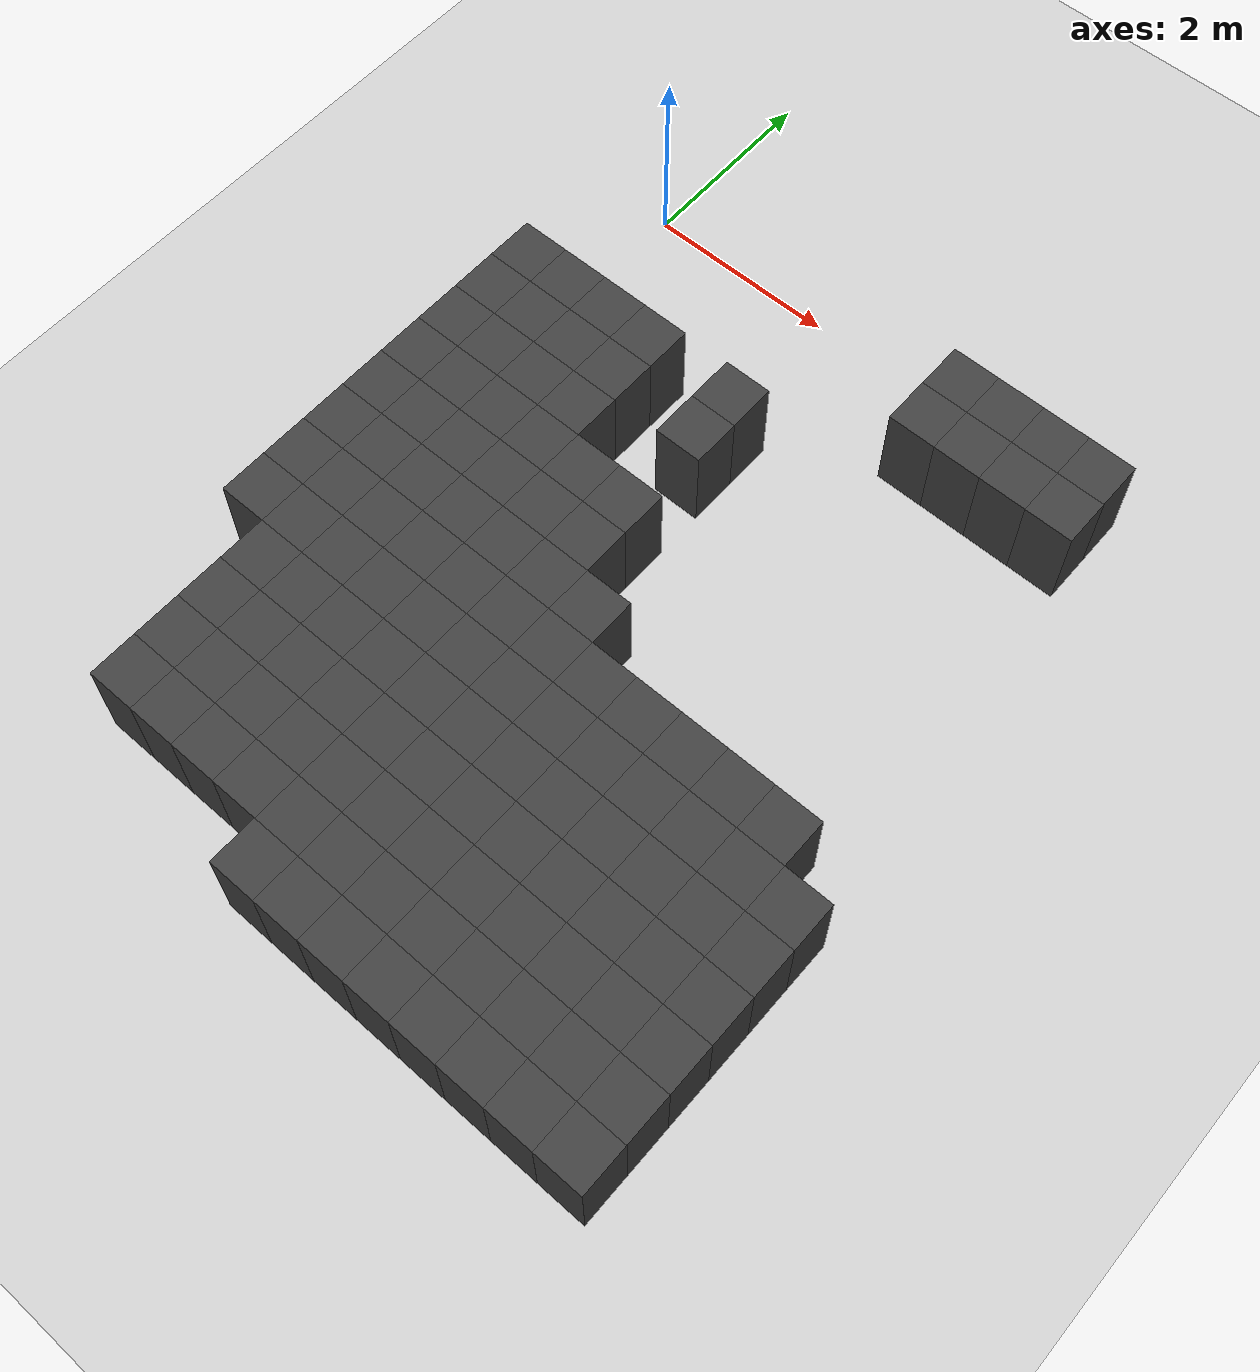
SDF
<sdf version="1.7">
 <world name="map_14547">
  <model name="ground_plane">
   <static>true</static>
   <link name="link">
    <collision name="collision">
     <geometry><plane><normal>0 0 1</normal><size>200 200</size></plane></geometry>
    </collision>
    <visual name="visual">
     <geometry><plane><normal>0 0 1</normal><size>200 200</size></plane></geometry>
     <material><ambient>0.8 0.8 0.8 1</ambient><diffuse>0.8 0.8 0.8 1</diffuse></material>
    </visual>
   </link>
  </model>
  <model name="maze_environment">
   <static>true</static>
   <link name="wall_907">
    <pose>3.750 -0.250 0.500 0 0 0</pose>
    <collision name="col"><geometry><box><size>0.5 0.5 1.0</size></box></geometry></collision>
    <visual name="vis">
     <geometry><box><size>0.5 0.5 1.0</size></box></geometry>
     <material><ambient>0.15 0.15 0.15 1</ambient><diffuse>0.25 0.25 0.25 1</diffuse></material>
    </visual>
   </link>
   <link name="wall_908">
    <pose>4.250 -0.250 0.500 0 0 0</pose>
    <collision name="col"><geometry><box><size>0.5 0.5 1.0</size></box></geometry></collision>
    <visual name="vis">
     <geometry><box><size>0.5 0.5 1.0</size></box></geometry>
     <material><ambient>0.15 0.15 0.15 1</ambient><diffuse>0.25 0.25 0.25 1</diffuse></material>
    </visual>
   </link>
   <link name="wall_909">
    <pose>4.750 -0.250 0.500 0 0 0</pose>
    <collision name="col"><geometry><box><size>0.5 0.5 1.0</size></box></geometry></collision>
    <visual name="vis">
     <geometry><box><size>0.5 0.5 1.0</size></box></geometry>
     <material><ambient>0.15 0.15 0.15 1</ambient><diffuse>0.25 0.25 0.25 1</diffuse></material>
    </visual>
   </link>
   <link name="wall_910">
    <pose>5.250 -0.250 0.500 0 0 0</pose>
    <collision name="col"><geometry><box><size>0.5 0.5 1.0</size></box></geometry></collision>
    <visual name="vis">
     <geometry><box><size>0.5 0.5 1.0</size></box></geometry>
     <material><ambient>0.15 0.15 0.15 1</ambient><diffuse>0.25 0.25 0.25 1</diffuse></material>
    </visual>
   </link>
   <link name="wall_946">
    <pose>3.750 -0.750 0.500 0 0 0</pose>
    <collision name="col"><geometry><box><size>0.5 0.5 1.0</size></box></geometry></collision>
    <visual name="vis">
     <geometry><box><size>0.5 0.5 1.0</size></box></geometry>
     <material><ambient>0.15 0.15 0.15 1</ambient><diffuse>0.25 0.25 0.25 1</diffuse></material>
    </visual>
   </link>
   <link name="wall_947">
    <pose>4.250 -0.750 0.500 0 0 0</pose>
    <collision name="col"><geometry><box><size>0.5 0.5 1.0</size></box></geometry></collision>
    <visual name="vis">
     <geometry><box><size>0.5 0.5 1.0</size></box></geometry>
     <material><ambient>0.15 0.15 0.15 1</ambient><diffuse>0.25 0.25 0.25 1</diffuse></material>
    </visual>
   </link>
   <link name="wall_948">
    <pose>4.750 -0.750 0.500 0 0 0</pose>
    <collision name="col"><geometry><box><size>0.5 0.5 1.0</size></box></geometry></collision>
    <visual name="vis">
     <geometry><box><size>0.5 0.5 1.0</size></box></geometry>
     <material><ambient>0.15 0.15 0.15 1</ambient><diffuse>0.25 0.25 0.25 1</diffuse></material>
    </visual>
   </link>
   <link name="wall_949">
    <pose>5.250 -0.750 0.500 0 0 0</pose>
    <collision name="col"><geometry><box><size>0.5 0.5 1.0</size></box></geometry></collision>
    <visual name="vis">
     <geometry><box><size>0.5 0.5 1.0</size></box></geometry>
     <material><ambient>0.15 0.15 0.15 1</ambient><diffuse>0.25 0.25 0.25 1</diffuse></material>
    </visual>
   </link>
   <link name="wall_1015">
    <pose>-0.250 -1.750 0.500 0 0 0</pose>
    <collision name="col"><geometry><box><size>0.5 0.5 1.0</size></box></geometry></collision>
    <visual name="vis">
     <geometry><box><size>0.5 0.5 1.0</size></box></geometry>
     <material><ambient>0.15 0.15 0.15 1</ambient><diffuse>0.25 0.25 0.25 1</diffuse></material>
    </visual>
   </link>
   <link name="wall_1016">
    <pose>0.250 -1.750 0.500 0 0 0</pose>
    <collision name="col"><geometry><box><size>0.5 0.5 1.0</size></box></geometry></collision>
    <visual name="vis">
     <geometry><box><size>0.5 0.5 1.0</size></box></geometry>
     <material><ambient>0.15 0.15 0.15 1</ambient><diffuse>0.25 0.25 0.25 1</diffuse></material>
    </visual>
   </link>
   <link name="wall_1017">
    <pose>0.750 -1.750 0.500 0 0 0</pose>
    <collision name="col"><geometry><box><size>0.5 0.5 1.0</size></box></geometry></collision>
    <visual name="vis">
     <geometry><box><size>0.5 0.5 1.0</size></box></geometry>
     <material><ambient>0.15 0.15 0.15 1</ambient><diffuse>0.25 0.25 0.25 1</diffuse></material>
    </visual>
   </link>
   <link name="wall_1018">
    <pose>1.250 -1.750 0.500 0 0 0</pose>
    <collision name="col"><geometry><box><size>0.5 0.5 1.0</size></box></geometry></collision>
    <visual name="vis">
     <geometry><box><size>0.5 0.5 1.0</size></box></geometry>
     <material><ambient>0.15 0.15 0.15 1</ambient><diffuse>0.25 0.25 0.25 1</diffuse></material>
    </visual>
   </link>
   <link name="wall_1019">
    <pose>2.250 -1.750 0.500 0 0 0</pose>
    <collision name="col"><geometry><box><size>0.5 0.5 1.0</size></box></geometry></collision>
    <visual name="vis">
     <geometry><box><size>0.5 0.5 1.0</size></box></geometry>
     <material><ambient>0.15 0.15 0.15 1</ambient><diffuse>0.25 0.25 0.25 1</diffuse></material>
    </visual>
   </link>
   <link name="wall_1049">
    <pose>-0.250 -2.250 0.500 0 0 0</pose>
    <collision name="col"><geometry><box><size>0.5 0.5 1.0</size></box></geometry></collision>
    <visual name="vis">
     <geometry><box><size>0.5 0.5 1.0</size></box></geometry>
     <material><ambient>0.15 0.15 0.15 1</ambient><diffuse>0.25 0.25 0.25 1</diffuse></material>
    </visual>
   </link>
   <link name="wall_1050">
    <pose>0.250 -2.250 0.500 0 0 0</pose>
    <collision name="col"><geometry><box><size>0.5 0.5 1.0</size></box></geometry></collision>
    <visual name="vis">
     <geometry><box><size>0.5 0.5 1.0</size></box></geometry>
     <material><ambient>0.15 0.15 0.15 1</ambient><diffuse>0.25 0.25 0.25 1</diffuse></material>
    </visual>
   </link>
   <link name="wall_1051">
    <pose>0.750 -2.250 0.500 0 0 0</pose>
    <collision name="col"><geometry><box><size>0.5 0.5 1.0</size></box></geometry></collision>
    <visual name="vis">
     <geometry><box><size>0.5 0.5 1.0</size></box></geometry>
     <material><ambient>0.15 0.15 0.15 1</ambient><diffuse>0.25 0.25 0.25 1</diffuse></material>
    </visual>
   </link>
   <link name="wall_1052">
    <pose>1.250 -2.250 0.500 0 0 0</pose>
    <collision name="col"><geometry><box><size>0.5 0.5 1.0</size></box></geometry></collision>
    <visual name="vis">
     <geometry><box><size>0.5 0.5 1.0</size></box></geometry>
     <material><ambient>0.15 0.15 0.15 1</ambient><diffuse>0.25 0.25 0.25 1</diffuse></material>
    </visual>
   </link>
   <link name="wall_1053">
    <pose>2.250 -2.250 0.500 0 0 0</pose>
    <collision name="col"><geometry><box><size>0.5 0.5 1.0</size></box></geometry></collision>
    <visual name="vis">
     <geometry><box><size>0.5 0.5 1.0</size></box></geometry>
     <material><ambient>0.15 0.15 0.15 1</ambient><diffuse>0.25 0.25 0.25 1</diffuse></material>
    </visual>
   </link>
   <link name="wall_1079">
    <pose>-0.250 -2.750 0.500 0 0 0</pose>
    <collision name="col"><geometry><box><size>0.5 0.5 1.0</size></box></geometry></collision>
    <visual name="vis">
     <geometry><box><size>0.5 0.5 1.0</size></box></geometry>
     <material><ambient>0.15 0.15 0.15 1</ambient><diffuse>0.25 0.25 0.25 1</diffuse></material>
    </visual>
   </link>
   <link name="wall_1080">
    <pose>0.250 -2.750 0.500 0 0 0</pose>
    <collision name="col"><geometry><box><size>0.5 0.5 1.0</size></box></geometry></collision>
    <visual name="vis">
     <geometry><box><size>0.5 0.5 1.0</size></box></geometry>
     <material><ambient>0.15 0.15 0.15 1</ambient><diffuse>0.25 0.25 0.25 1</diffuse></material>
    </visual>
   </link>
   <link name="wall_1081">
    <pose>0.750 -2.750 0.500 0 0 0</pose>
    <collision name="col"><geometry><box><size>0.5 0.5 1.0</size></box></geometry></collision>
    <visual name="vis">
     <geometry><box><size>0.5 0.5 1.0</size></box></geometry>
     <material><ambient>0.15 0.15 0.15 1</ambient><diffuse>0.25 0.25 0.25 1</diffuse></material>
    </visual>
   </link>
   <link name="wall_1082">
    <pose>1.250 -2.750 0.500 0 0 0</pose>
    <collision name="col"><geometry><box><size>0.5 0.5 1.0</size></box></geometry></collision>
    <visual name="vis">
     <geometry><box><size>0.5 0.5 1.0</size></box></geometry>
     <material><ambient>0.15 0.15 0.15 1</ambient><diffuse>0.25 0.25 0.25 1</diffuse></material>
    </visual>
   </link>
   <link name="wall_1112">
    <pose>-0.250 -3.250 0.500 0 0 0</pose>
    <collision name="col"><geometry><box><size>0.5 0.5 1.0</size></box></geometry></collision>
    <visual name="vis">
     <geometry><box><size>0.5 0.5 1.0</size></box></geometry>
     <material><ambient>0.15 0.15 0.15 1</ambient><diffuse>0.25 0.25 0.25 1</diffuse></material>
    </visual>
   </link>
   <link name="wall_1113">
    <pose>0.250 -3.250 0.500 0 0 0</pose>
    <collision name="col"><geometry><box><size>0.5 0.5 1.0</size></box></geometry></collision>
    <visual name="vis">
     <geometry><box><size>0.5 0.5 1.0</size></box></geometry>
     <material><ambient>0.15 0.15 0.15 1</ambient><diffuse>0.25 0.25 0.25 1</diffuse></material>
    </visual>
   </link>
   <link name="wall_1114">
    <pose>0.750 -3.250 0.500 0 0 0</pose>
    <collision name="col"><geometry><box><size>0.5 0.5 1.0</size></box></geometry></collision>
    <visual name="vis">
     <geometry><box><size>0.5 0.5 1.0</size></box></geometry>
     <material><ambient>0.15 0.15 0.15 1</ambient><diffuse>0.25 0.25 0.25 1</diffuse></material>
    </visual>
   </link>
   <link name="wall_1115">
    <pose>1.250 -3.250 0.500 0 0 0</pose>
    <collision name="col"><geometry><box><size>0.5 0.5 1.0</size></box></geometry></collision>
    <visual name="vis">
     <geometry><box><size>0.5 0.5 1.0</size></box></geometry>
     <material><ambient>0.15 0.15 0.15 1</ambient><diffuse>0.25 0.25 0.25 1</diffuse></material>
    </visual>
   </link>
   <link name="wall_1116">
    <pose>1.750 -3.250 0.500 0 0 0</pose>
    <collision name="col"><geometry><box><size>0.5 0.5 1.0</size></box></geometry></collision>
    <visual name="vis">
     <geometry><box><size>0.5 0.5 1.0</size></box></geometry>
     <material><ambient>0.15 0.15 0.15 1</ambient><diffuse>0.25 0.25 0.25 1</diffuse></material>
    </visual>
   </link>
   <link name="wall_1117">
    <pose>2.250 -3.250 0.500 0 0 0</pose>
    <collision name="col"><geometry><box><size>0.5 0.5 1.0</size></box></geometry></collision>
    <visual name="vis">
     <geometry><box><size>0.5 0.5 1.0</size></box></geometry>
     <material><ambient>0.15 0.15 0.15 1</ambient><diffuse>0.25 0.25 0.25 1</diffuse></material>
    </visual>
   </link>
   <link name="wall_1146">
    <pose>-0.250 -3.750 0.500 0 0 0</pose>
    <collision name="col"><geometry><box><size>0.5 0.5 1.0</size></box></geometry></collision>
    <visual name="vis">
     <geometry><box><size>0.5 0.5 1.0</size></box></geometry>
     <material><ambient>0.15 0.15 0.15 1</ambient><diffuse>0.25 0.25 0.25 1</diffuse></material>
    </visual>
   </link>
   <link name="wall_1147">
    <pose>0.250 -3.750 0.500 0 0 0</pose>
    <collision name="col"><geometry><box><size>0.5 0.5 1.0</size></box></geometry></collision>
    <visual name="vis">
     <geometry><box><size>0.5 0.5 1.0</size></box></geometry>
     <material><ambient>0.15 0.15 0.15 1</ambient><diffuse>0.25 0.25 0.25 1</diffuse></material>
    </visual>
   </link>
   <link name="wall_1148">
    <pose>0.750 -3.750 0.500 0 0 0</pose>
    <collision name="col"><geometry><box><size>0.5 0.5 1.0</size></box></geometry></collision>
    <visual name="vis">
     <geometry><box><size>0.5 0.5 1.0</size></box></geometry>
     <material><ambient>0.15 0.15 0.15 1</ambient><diffuse>0.25 0.25 0.25 1</diffuse></material>
    </visual>
   </link>
   <link name="wall_1149">
    <pose>1.250 -3.750 0.500 0 0 0</pose>
    <collision name="col"><geometry><box><size>0.5 0.5 1.0</size></box></geometry></collision>
    <visual name="vis">
     <geometry><box><size>0.5 0.5 1.0</size></box></geometry>
     <material><ambient>0.15 0.15 0.15 1</ambient><diffuse>0.25 0.25 0.25 1</diffuse></material>
    </visual>
   </link>
   <link name="wall_1150">
    <pose>1.750 -3.750 0.500 0 0 0</pose>
    <collision name="col"><geometry><box><size>0.5 0.5 1.0</size></box></geometry></collision>
    <visual name="vis">
     <geometry><box><size>0.5 0.5 1.0</size></box></geometry>
     <material><ambient>0.15 0.15 0.15 1</ambient><diffuse>0.25 0.25 0.25 1</diffuse></material>
    </visual>
   </link>
   <link name="wall_1151">
    <pose>2.250 -3.750 0.500 0 0 0</pose>
    <collision name="col"><geometry><box><size>0.5 0.5 1.0</size></box></geometry></collision>
    <visual name="vis">
     <geometry><box><size>0.5 0.5 1.0</size></box></geometry>
     <material><ambient>0.15 0.15 0.15 1</ambient><diffuse>0.25 0.25 0.25 1</diffuse></material>
    </visual>
   </link>
   <link name="wall_1182">
    <pose>-0.250 -4.250 0.500 0 0 0</pose>
    <collision name="col"><geometry><box><size>0.5 0.5 1.0</size></box></geometry></collision>
    <visual name="vis">
     <geometry><box><size>0.5 0.5 1.0</size></box></geometry>
     <material><ambient>0.15 0.15 0.15 1</ambient><diffuse>0.25 0.25 0.25 1</diffuse></material>
    </visual>
   </link>
   <link name="wall_1183">
    <pose>0.250 -4.250 0.500 0 0 0</pose>
    <collision name="col"><geometry><box><size>0.5 0.5 1.0</size></box></geometry></collision>
    <visual name="vis">
     <geometry><box><size>0.5 0.5 1.0</size></box></geometry>
     <material><ambient>0.15 0.15 0.15 1</ambient><diffuse>0.25 0.25 0.25 1</diffuse></material>
    </visual>
   </link>
   <link name="wall_1184">
    <pose>0.750 -4.250 0.500 0 0 0</pose>
    <collision name="col"><geometry><box><size>0.5 0.5 1.0</size></box></geometry></collision>
    <visual name="vis">
     <geometry><box><size>0.5 0.5 1.0</size></box></geometry>
     <material><ambient>0.15 0.15 0.15 1</ambient><diffuse>0.25 0.25 0.25 1</diffuse></material>
    </visual>
   </link>
   <link name="wall_1185">
    <pose>1.250 -4.250 0.500 0 0 0</pose>
    <collision name="col"><geometry><box><size>0.5 0.5 1.0</size></box></geometry></collision>
    <visual name="vis">
     <geometry><box><size>0.5 0.5 1.0</size></box></geometry>
     <material><ambient>0.15 0.15 0.15 1</ambient><diffuse>0.25 0.25 0.25 1</diffuse></material>
    </visual>
   </link>
   <link name="wall_1186">
    <pose>1.750 -4.250 0.500 0 0 0</pose>
    <collision name="col"><geometry><box><size>0.5 0.5 1.0</size></box></geometry></collision>
    <visual name="vis">
     <geometry><box><size>0.5 0.5 1.0</size></box></geometry>
     <material><ambient>0.15 0.15 0.15 1</ambient><diffuse>0.25 0.25 0.25 1</diffuse></material>
    </visual>
   </link>
   <link name="wall_1187">
    <pose>2.250 -4.250 0.500 0 0 0</pose>
    <collision name="col"><geometry><box><size>0.5 0.5 1.0</size></box></geometry></collision>
    <visual name="vis">
     <geometry><box><size>0.5 0.5 1.0</size></box></geometry>
     <material><ambient>0.15 0.15 0.15 1</ambient><diffuse>0.25 0.25 0.25 1</diffuse></material>
    </visual>
   </link>
   <link name="wall_1188">
    <pose>2.750 -4.250 0.500 0 0 0</pose>
    <collision name="col"><geometry><box><size>0.5 0.5 1.0</size></box></geometry></collision>
    <visual name="vis">
     <geometry><box><size>0.5 0.5 1.0</size></box></geometry>
     <material><ambient>0.15 0.15 0.15 1</ambient><diffuse>0.25 0.25 0.25 1</diffuse></material>
    </visual>
   </link>
   <link name="wall_1219">
    <pose>-0.250 -4.750 0.500 0 0 0</pose>
    <collision name="col"><geometry><box><size>0.5 0.5 1.0</size></box></geometry></collision>
    <visual name="vis">
     <geometry><box><size>0.5 0.5 1.0</size></box></geometry>
     <material><ambient>0.15 0.15 0.15 1</ambient><diffuse>0.25 0.25 0.25 1</diffuse></material>
    </visual>
   </link>
   <link name="wall_1220">
    <pose>0.250 -4.750 0.500 0 0 0</pose>
    <collision name="col"><geometry><box><size>0.5 0.5 1.0</size></box></geometry></collision>
    <visual name="vis">
     <geometry><box><size>0.5 0.5 1.0</size></box></geometry>
     <material><ambient>0.15 0.15 0.15 1</ambient><diffuse>0.25 0.25 0.25 1</diffuse></material>
    </visual>
   </link>
   <link name="wall_1221">
    <pose>0.750 -4.750 0.500 0 0 0</pose>
    <collision name="col"><geometry><box><size>0.5 0.5 1.0</size></box></geometry></collision>
    <visual name="vis">
     <geometry><box><size>0.5 0.5 1.0</size></box></geometry>
     <material><ambient>0.15 0.15 0.15 1</ambient><diffuse>0.25 0.25 0.25 1</diffuse></material>
    </visual>
   </link>
   <link name="wall_1222">
    <pose>1.250 -4.750 0.500 0 0 0</pose>
    <collision name="col"><geometry><box><size>0.5 0.5 1.0</size></box></geometry></collision>
    <visual name="vis">
     <geometry><box><size>0.5 0.5 1.0</size></box></geometry>
     <material><ambient>0.15 0.15 0.15 1</ambient><diffuse>0.25 0.25 0.25 1</diffuse></material>
    </visual>
   </link>
   <link name="wall_1223">
    <pose>1.750 -4.750 0.500 0 0 0</pose>
    <collision name="col"><geometry><box><size>0.5 0.5 1.0</size></box></geometry></collision>
    <visual name="vis">
     <geometry><box><size>0.5 0.5 1.0</size></box></geometry>
     <material><ambient>0.15 0.15 0.15 1</ambient><diffuse>0.25 0.25 0.25 1</diffuse></material>
    </visual>
   </link>
   <link name="wall_1224">
    <pose>2.250 -4.750 0.500 0 0 0</pose>
    <collision name="col"><geometry><box><size>0.5 0.5 1.0</size></box></geometry></collision>
    <visual name="vis">
     <geometry><box><size>0.5 0.5 1.0</size></box></geometry>
     <material><ambient>0.15 0.15 0.15 1</ambient><diffuse>0.25 0.25 0.25 1</diffuse></material>
    </visual>
   </link>
   <link name="wall_1225">
    <pose>2.750 -4.750 0.500 0 0 0</pose>
    <collision name="col"><geometry><box><size>0.5 0.5 1.0</size></box></geometry></collision>
    <visual name="vis">
     <geometry><box><size>0.5 0.5 1.0</size></box></geometry>
     <material><ambient>0.15 0.15 0.15 1</ambient><diffuse>0.25 0.25 0.25 1</diffuse></material>
    </visual>
   </link>
   <link name="wall_1226">
    <pose>3.250 -4.750 0.500 0 0 0</pose>
    <collision name="col"><geometry><box><size>0.5 0.5 1.0</size></box></geometry></collision>
    <visual name="vis">
     <geometry><box><size>0.5 0.5 1.0</size></box></geometry>
     <material><ambient>0.15 0.15 0.15 1</ambient><diffuse>0.25 0.25 0.25 1</diffuse></material>
    </visual>
   </link>
   <link name="wall_1227">
    <pose>3.750 -4.750 0.500 0 0 0</pose>
    <collision name="col"><geometry><box><size>0.5 0.5 1.0</size></box></geometry></collision>
    <visual name="vis">
     <geometry><box><size>0.5 0.5 1.0</size></box></geometry>
     <material><ambient>0.15 0.15 0.15 1</ambient><diffuse>0.25 0.25 0.25 1</diffuse></material>
    </visual>
   </link>
   <link name="wall_1228">
    <pose>4.250 -4.750 0.500 0 0 0</pose>
    <collision name="col"><geometry><box><size>0.5 0.5 1.0</size></box></geometry></collision>
    <visual name="vis">
     <geometry><box><size>0.5 0.5 1.0</size></box></geometry>
     <material><ambient>0.15 0.15 0.15 1</ambient><diffuse>0.25 0.25 0.25 1</diffuse></material>
    </visual>
   </link>
   <link name="wall_1229">
    <pose>4.750 -4.750 0.500 0 0 0</pose>
    <collision name="col"><geometry><box><size>0.5 0.5 1.0</size></box></geometry></collision>
    <visual name="vis">
     <geometry><box><size>0.5 0.5 1.0</size></box></geometry>
     <material><ambient>0.15 0.15 0.15 1</ambient><diffuse>0.25 0.25 0.25 1</diffuse></material>
    </visual>
   </link>
   <link name="wall_1230">
    <pose>5.250 -4.750 0.500 0 0 0</pose>
    <collision name="col"><geometry><box><size>0.5 0.5 1.0</size></box></geometry></collision>
    <visual name="vis">
     <geometry><box><size>0.5 0.5 1.0</size></box></geometry>
     <material><ambient>0.15 0.15 0.15 1</ambient><diffuse>0.25 0.25 0.25 1</diffuse></material>
    </visual>
   </link>
   <link name="wall_1258">
    <pose>-0.250 -5.250 0.500 0 0 0</pose>
    <collision name="col"><geometry><box><size>0.5 0.5 1.0</size></box></geometry></collision>
    <visual name="vis">
     <geometry><box><size>0.5 0.5 1.0</size></box></geometry>
     <material><ambient>0.15 0.15 0.15 1</ambient><diffuse>0.25 0.25 0.25 1</diffuse></material>
    </visual>
   </link>
   <link name="wall_1259">
    <pose>0.250 -5.250 0.500 0 0 0</pose>
    <collision name="col"><geometry><box><size>0.5 0.5 1.0</size></box></geometry></collision>
    <visual name="vis">
     <geometry><box><size>0.5 0.5 1.0</size></box></geometry>
     <material><ambient>0.15 0.15 0.15 1</ambient><diffuse>0.25 0.25 0.25 1</diffuse></material>
    </visual>
   </link>
   <link name="wall_1260">
    <pose>0.750 -5.250 0.500 0 0 0</pose>
    <collision name="col"><geometry><box><size>0.5 0.5 1.0</size></box></geometry></collision>
    <visual name="vis">
     <geometry><box><size>0.5 0.5 1.0</size></box></geometry>
     <material><ambient>0.15 0.15 0.15 1</ambient><diffuse>0.25 0.25 0.25 1</diffuse></material>
    </visual>
   </link>
   <link name="wall_1261">
    <pose>1.250 -5.250 0.500 0 0 0</pose>
    <collision name="col"><geometry><box><size>0.5 0.5 1.0</size></box></geometry></collision>
    <visual name="vis">
     <geometry><box><size>0.5 0.5 1.0</size></box></geometry>
     <material><ambient>0.15 0.15 0.15 1</ambient><diffuse>0.25 0.25 0.25 1</diffuse></material>
    </visual>
   </link>
   <link name="wall_1262">
    <pose>1.750 -5.250 0.500 0 0 0</pose>
    <collision name="col"><geometry><box><size>0.5 0.5 1.0</size></box></geometry></collision>
    <visual name="vis">
     <geometry><box><size>0.5 0.5 1.0</size></box></geometry>
     <material><ambient>0.15 0.15 0.15 1</ambient><diffuse>0.25 0.25 0.25 1</diffuse></material>
    </visual>
   </link>
   <link name="wall_1263">
    <pose>2.250 -5.250 0.500 0 0 0</pose>
    <collision name="col"><geometry><box><size>0.5 0.5 1.0</size></box></geometry></collision>
    <visual name="vis">
     <geometry><box><size>0.5 0.5 1.0</size></box></geometry>
     <material><ambient>0.15 0.15 0.15 1</ambient><diffuse>0.25 0.25 0.25 1</diffuse></material>
    </visual>
   </link>
   <link name="wall_1264">
    <pose>2.750 -5.250 0.500 0 0 0</pose>
    <collision name="col"><geometry><box><size>0.5 0.5 1.0</size></box></geometry></collision>
    <visual name="vis">
     <geometry><box><size>0.5 0.5 1.0</size></box></geometry>
     <material><ambient>0.15 0.15 0.15 1</ambient><diffuse>0.25 0.25 0.25 1</diffuse></material>
    </visual>
   </link>
   <link name="wall_1265">
    <pose>3.250 -5.250 0.500 0 0 0</pose>
    <collision name="col"><geometry><box><size>0.5 0.5 1.0</size></box></geometry></collision>
    <visual name="vis">
     <geometry><box><size>0.5 0.5 1.0</size></box></geometry>
     <material><ambient>0.15 0.15 0.15 1</ambient><diffuse>0.25 0.25 0.25 1</diffuse></material>
    </visual>
   </link>
   <link name="wall_1266">
    <pose>3.750 -5.250 0.500 0 0 0</pose>
    <collision name="col"><geometry><box><size>0.5 0.5 1.0</size></box></geometry></collision>
    <visual name="vis">
     <geometry><box><size>0.5 0.5 1.0</size></box></geometry>
     <material><ambient>0.15 0.15 0.15 1</ambient><diffuse>0.25 0.25 0.25 1</diffuse></material>
    </visual>
   </link>
   <link name="wall_1267">
    <pose>4.250 -5.250 0.500 0 0 0</pose>
    <collision name="col"><geometry><box><size>0.5 0.5 1.0</size></box></geometry></collision>
    <visual name="vis">
     <geometry><box><size>0.5 0.5 1.0</size></box></geometry>
     <material><ambient>0.15 0.15 0.15 1</ambient><diffuse>0.25 0.25 0.25 1</diffuse></material>
    </visual>
   </link>
   <link name="wall_1268">
    <pose>4.750 -5.250 0.500 0 0 0</pose>
    <collision name="col"><geometry><box><size>0.5 0.5 1.0</size></box></geometry></collision>
    <visual name="vis">
     <geometry><box><size>0.5 0.5 1.0</size></box></geometry>
     <material><ambient>0.15 0.15 0.15 1</ambient><diffuse>0.25 0.25 0.25 1</diffuse></material>
    </visual>
   </link>
   <link name="wall_1269">
    <pose>5.250 -5.250 0.500 0 0 0</pose>
    <collision name="col"><geometry><box><size>0.5 0.5 1.0</size></box></geometry></collision>
    <visual name="vis">
     <geometry><box><size>0.5 0.5 1.0</size></box></geometry>
     <material><ambient>0.15 0.15 0.15 1</ambient><diffuse>0.25 0.25 0.25 1</diffuse></material>
    </visual>
   </link>
   <link name="wall_1270">
    <pose>5.750 -5.250 0.500 0 0 0</pose>
    <collision name="col"><geometry><box><size>0.5 0.5 1.0</size></box></geometry></collision>
    <visual name="vis">
     <geometry><box><size>0.5 0.5 1.0</size></box></geometry>
     <material><ambient>0.15 0.15 0.15 1</ambient><diffuse>0.25 0.25 0.25 1</diffuse></material>
    </visual>
   </link>
   <link name="wall_1295">
    <pose>0.250 -5.750 0.500 0 0 0</pose>
    <collision name="col"><geometry><box><size>0.5 0.5 1.0</size></box></geometry></collision>
    <visual name="vis">
     <geometry><box><size>0.5 0.5 1.0</size></box></geometry>
     <material><ambient>0.15 0.15 0.15 1</ambient><diffuse>0.25 0.25 0.25 1</diffuse></material>
    </visual>
   </link>
   <link name="wall_1296">
    <pose>0.750 -5.750 0.500 0 0 0</pose>
    <collision name="col"><geometry><box><size>0.5 0.5 1.0</size></box></geometry></collision>
    <visual name="vis">
     <geometry><box><size>0.5 0.5 1.0</size></box></geometry>
     <material><ambient>0.15 0.15 0.15 1</ambient><diffuse>0.25 0.25 0.25 1</diffuse></material>
    </visual>
   </link>
   <link name="wall_1297">
    <pose>1.250 -5.750 0.500 0 0 0</pose>
    <collision name="col"><geometry><box><size>0.5 0.5 1.0</size></box></geometry></collision>
    <visual name="vis">
     <geometry><box><size>0.5 0.5 1.0</size></box></geometry>
     <material><ambient>0.15 0.15 0.15 1</ambient><diffuse>0.25 0.25 0.25 1</diffuse></material>
    </visual>
   </link>
   <link name="wall_1298">
    <pose>1.750 -5.750 0.500 0 0 0</pose>
    <collision name="col"><geometry><box><size>0.5 0.5 1.0</size></box></geometry></collision>
    <visual name="vis">
     <geometry><box><size>0.5 0.5 1.0</size></box></geometry>
     <material><ambient>0.15 0.15 0.15 1</ambient><diffuse>0.25 0.25 0.25 1</diffuse></material>
    </visual>
   </link>
   <link name="wall_1299">
    <pose>2.250 -5.750 0.500 0 0 0</pose>
    <collision name="col"><geometry><box><size>0.5 0.5 1.0</size></box></geometry></collision>
    <visual name="vis">
     <geometry><box><size>0.5 0.5 1.0</size></box></geometry>
     <material><ambient>0.15 0.15 0.15 1</ambient><diffuse>0.25 0.25 0.25 1</diffuse></material>
    </visual>
   </link>
   <link name="wall_1300">
    <pose>2.750 -5.750 0.500 0 0 0</pose>
    <collision name="col"><geometry><box><size>0.5 0.5 1.0</size></box></geometry></collision>
    <visual name="vis">
     <geometry><box><size>0.5 0.5 1.0</size></box></geometry>
     <material><ambient>0.15 0.15 0.15 1</ambient><diffuse>0.25 0.25 0.25 1</diffuse></material>
    </visual>
   </link>
   <link name="wall_1301">
    <pose>3.250 -5.750 0.500 0 0 0</pose>
    <collision name="col"><geometry><box><size>0.5 0.5 1.0</size></box></geometry></collision>
    <visual name="vis">
     <geometry><box><size>0.5 0.5 1.0</size></box></geometry>
     <material><ambient>0.15 0.15 0.15 1</ambient><diffuse>0.25 0.25 0.25 1</diffuse></material>
    </visual>
   </link>
   <link name="wall_1302">
    <pose>3.750 -5.750 0.500 0 0 0</pose>
    <collision name="col"><geometry><box><size>0.5 0.5 1.0</size></box></geometry></collision>
    <visual name="vis">
     <geometry><box><size>0.5 0.5 1.0</size></box></geometry>
     <material><ambient>0.15 0.15 0.15 1</ambient><diffuse>0.25 0.25 0.25 1</diffuse></material>
    </visual>
   </link>
   <link name="wall_1303">
    <pose>4.250 -5.750 0.500 0 0 0</pose>
    <collision name="col"><geometry><box><size>0.5 0.5 1.0</size></box></geometry></collision>
    <visual name="vis">
     <geometry><box><size>0.5 0.5 1.0</size></box></geometry>
     <material><ambient>0.15 0.15 0.15 1</ambient><diffuse>0.25 0.25 0.25 1</diffuse></material>
    </visual>
   </link>
   <link name="wall_1304">
    <pose>4.750 -5.750 0.500 0 0 0</pose>
    <collision name="col"><geometry><box><size>0.5 0.5 1.0</size></box></geometry></collision>
    <visual name="vis">
     <geometry><box><size>0.5 0.5 1.0</size></box></geometry>
     <material><ambient>0.15 0.15 0.15 1</ambient><diffuse>0.25 0.25 0.25 1</diffuse></material>
    </visual>
   </link>
   <link name="wall_1305">
    <pose>5.250 -5.750 0.500 0 0 0</pose>
    <collision name="col"><geometry><box><size>0.5 0.5 1.0</size></box></geometry></collision>
    <visual name="vis">
     <geometry><box><size>0.5 0.5 1.0</size></box></geometry>
     <material><ambient>0.15 0.15 0.15 1</ambient><diffuse>0.25 0.25 0.25 1</diffuse></material>
    </visual>
   </link>
   <link name="wall_1306">
    <pose>5.750 -5.750 0.500 0 0 0</pose>
    <collision name="col"><geometry><box><size>0.5 0.5 1.0</size></box></geometry></collision>
    <visual name="vis">
     <geometry><box><size>0.5 0.5 1.0</size></box></geometry>
     <material><ambient>0.15 0.15 0.15 1</ambient><diffuse>0.25 0.25 0.25 1</diffuse></material>
    </visual>
   </link>
   <link name="wall_1323">
    <pose>0.250 -6.250 0.500 0 0 0</pose>
    <collision name="col"><geometry><box><size>0.5 0.5 1.0</size></box></geometry></collision>
    <visual name="vis">
     <geometry><box><size>0.5 0.5 1.0</size></box></geometry>
     <material><ambient>0.15 0.15 0.15 1</ambient><diffuse>0.25 0.25 0.25 1</diffuse></material>
    </visual>
   </link>
   <link name="wall_1324">
    <pose>0.750 -6.250 0.500 0 0 0</pose>
    <collision name="col"><geometry><box><size>0.5 0.5 1.0</size></box></geometry></collision>
    <visual name="vis">
     <geometry><box><size>0.5 0.5 1.0</size></box></geometry>
     <material><ambient>0.15 0.15 0.15 1</ambient><diffuse>0.25 0.25 0.25 1</diffuse></material>
    </visual>
   </link>
   <link name="wall_1325">
    <pose>1.250 -6.250 0.500 0 0 0</pose>
    <collision name="col"><geometry><box><size>0.5 0.5 1.0</size></box></geometry></collision>
    <visual name="vis">
     <geometry><box><size>0.5 0.5 1.0</size></box></geometry>
     <material><ambient>0.15 0.15 0.15 1</ambient><diffuse>0.25 0.25 0.25 1</diffuse></material>
    </visual>
   </link>
   <link name="wall_1326">
    <pose>1.750 -6.250 0.500 0 0 0</pose>
    <collision name="col"><geometry><box><size>0.5 0.5 1.0</size></box></geometry></collision>
    <visual name="vis">
     <geometry><box><size>0.5 0.5 1.0</size></box></geometry>
     <material><ambient>0.15 0.15 0.15 1</ambient><diffuse>0.25 0.25 0.25 1</diffuse></material>
    </visual>
   </link>
   <link name="wall_1327">
    <pose>2.250 -6.250 0.500 0 0 0</pose>
    <collision name="col"><geometry><box><size>0.5 0.5 1.0</size></box></geometry></collision>
    <visual name="vis">
     <geometry><box><size>0.5 0.5 1.0</size></box></geometry>
     <material><ambient>0.15 0.15 0.15 1</ambient><diffuse>0.25 0.25 0.25 1</diffuse></material>
    </visual>
   </link>
   <link name="wall_1328">
    <pose>2.750 -6.250 0.500 0 0 0</pose>
    <collision name="col"><geometry><box><size>0.5 0.5 1.0</size></box></geometry></collision>
    <visual name="vis">
     <geometry><box><size>0.5 0.5 1.0</size></box></geometry>
     <material><ambient>0.15 0.15 0.15 1</ambient><diffuse>0.25 0.25 0.25 1</diffuse></material>
    </visual>
   </link>
   <link name="wall_1329">
    <pose>3.250 -6.250 0.500 0 0 0</pose>
    <collision name="col"><geometry><box><size>0.5 0.5 1.0</size></box></geometry></collision>
    <visual name="vis">
     <geometry><box><size>0.5 0.5 1.0</size></box></geometry>
     <material><ambient>0.15 0.15 0.15 1</ambient><diffuse>0.25 0.25 0.25 1</diffuse></material>
    </visual>
   </link>
   <link name="wall_1330">
    <pose>3.750 -6.250 0.500 0 0 0</pose>
    <collision name="col"><geometry><box><size>0.5 0.5 1.0</size></box></geometry></collision>
    <visual name="vis">
     <geometry><box><size>0.5 0.5 1.0</size></box></geometry>
     <material><ambient>0.15 0.15 0.15 1</ambient><diffuse>0.25 0.25 0.25 1</diffuse></material>
    </visual>
   </link>
   <link name="wall_1331">
    <pose>4.250 -6.250 0.500 0 0 0</pose>
    <collision name="col"><geometry><box><size>0.5 0.5 1.0</size></box></geometry></collision>
    <visual name="vis">
     <geometry><box><size>0.5 0.5 1.0</size></box></geometry>
     <material><ambient>0.15 0.15 0.15 1</ambient><diffuse>0.25 0.25 0.25 1</diffuse></material>
    </visual>
   </link>
   <link name="wall_1332">
    <pose>4.750 -6.250 0.500 0 0 0</pose>
    <collision name="col"><geometry><box><size>0.5 0.5 1.0</size></box></geometry></collision>
    <visual name="vis">
     <geometry><box><size>0.5 0.5 1.0</size></box></geometry>
     <material><ambient>0.15 0.15 0.15 1</ambient><diffuse>0.25 0.25 0.25 1</diffuse></material>
    </visual>
   </link>
   <link name="wall_1333">
    <pose>5.250 -6.250 0.500 0 0 0</pose>
    <collision name="col"><geometry><box><size>0.5 0.5 1.0</size></box></geometry></collision>
    <visual name="vis">
     <geometry><box><size>0.5 0.5 1.0</size></box></geometry>
     <material><ambient>0.15 0.15 0.15 1</ambient><diffuse>0.25 0.25 0.25 1</diffuse></material>
    </visual>
   </link>
   <link name="wall_1334">
    <pose>5.750 -6.250 0.500 0 0 0</pose>
    <collision name="col"><geometry><box><size>0.5 0.5 1.0</size></box></geometry></collision>
    <visual name="vis">
     <geometry><box><size>0.5 0.5 1.0</size></box></geometry>
     <material><ambient>0.15 0.15 0.15 1</ambient><diffuse>0.25 0.25 0.25 1</diffuse></material>
    </visual>
   </link>
   <link name="wall_1350">
    <pose>0.250 -6.750 0.500 0 0 0</pose>
    <collision name="col"><geometry><box><size>0.5 0.5 1.0</size></box></geometry></collision>
    <visual name="vis">
     <geometry><box><size>0.5 0.5 1.0</size></box></geometry>
     <material><ambient>0.15 0.15 0.15 1</ambient><diffuse>0.25 0.25 0.25 1</diffuse></material>
    </visual>
   </link>
   <link name="wall_1351">
    <pose>0.750 -6.750 0.500 0 0 0</pose>
    <collision name="col"><geometry><box><size>0.5 0.5 1.0</size></box></geometry></collision>
    <visual name="vis">
     <geometry><box><size>0.5 0.5 1.0</size></box></geometry>
     <material><ambient>0.15 0.15 0.15 1</ambient><diffuse>0.25 0.25 0.25 1</diffuse></material>
    </visual>
   </link>
   <link name="wall_1352">
    <pose>1.250 -6.750 0.500 0 0 0</pose>
    <collision name="col"><geometry><box><size>0.5 0.5 1.0</size></box></geometry></collision>
    <visual name="vis">
     <geometry><box><size>0.5 0.5 1.0</size></box></geometry>
     <material><ambient>0.15 0.15 0.15 1</ambient><diffuse>0.25 0.25 0.25 1</diffuse></material>
    </visual>
   </link>
   <link name="wall_1353">
    <pose>1.750 -6.750 0.500 0 0 0</pose>
    <collision name="col"><geometry><box><size>0.5 0.5 1.0</size></box></geometry></collision>
    <visual name="vis">
     <geometry><box><size>0.5 0.5 1.0</size></box></geometry>
     <material><ambient>0.15 0.15 0.15 1</ambient><diffuse>0.25 0.25 0.25 1</diffuse></material>
    </visual>
   </link>
   <link name="wall_1354">
    <pose>2.250 -6.750 0.500 0 0 0</pose>
    <collision name="col"><geometry><box><size>0.5 0.5 1.0</size></box></geometry></collision>
    <visual name="vis">
     <geometry><box><size>0.5 0.5 1.0</size></box></geometry>
     <material><ambient>0.15 0.15 0.15 1</ambient><diffuse>0.25 0.25 0.25 1</diffuse></material>
    </visual>
   </link>
   <link name="wall_1355">
    <pose>2.750 -6.750 0.500 0 0 0</pose>
    <collision name="col"><geometry><box><size>0.5 0.5 1.0</size></box></geometry></collision>
    <visual name="vis">
     <geometry><box><size>0.5 0.5 1.0</size></box></geometry>
     <material><ambient>0.15 0.15 0.15 1</ambient><diffuse>0.25 0.25 0.25 1</diffuse></material>
    </visual>
   </link>
   <link name="wall_1356">
    <pose>3.250 -6.750 0.500 0 0 0</pose>
    <collision name="col"><geometry><box><size>0.5 0.5 1.0</size></box></geometry></collision>
    <visual name="vis">
     <geometry><box><size>0.5 0.5 1.0</size></box></geometry>
     <material><ambient>0.15 0.15 0.15 1</ambient><diffuse>0.25 0.25 0.25 1</diffuse></material>
    </visual>
   </link>
   <link name="wall_1357">
    <pose>3.750 -6.750 0.500 0 0 0</pose>
    <collision name="col"><geometry><box><size>0.5 0.5 1.0</size></box></geometry></collision>
    <visual name="vis">
     <geometry><box><size>0.5 0.5 1.0</size></box></geometry>
     <material><ambient>0.15 0.15 0.15 1</ambient><diffuse>0.25 0.25 0.25 1</diffuse></material>
    </visual>
   </link>
   <link name="wall_1358">
    <pose>4.250 -6.750 0.500 0 0 0</pose>
    <collision name="col"><geometry><box><size>0.5 0.5 1.0</size></box></geometry></collision>
    <visual name="vis">
     <geometry><box><size>0.5 0.5 1.0</size></box></geometry>
     <material><ambient>0.15 0.15 0.15 1</ambient><diffuse>0.25 0.25 0.25 1</diffuse></material>
    </visual>
   </link>
   <link name="wall_1359">
    <pose>4.750 -6.750 0.500 0 0 0</pose>
    <collision name="col"><geometry><box><size>0.5 0.5 1.0</size></box></geometry></collision>
    <visual name="vis">
     <geometry><box><size>0.5 0.5 1.0</size></box></geometry>
     <material><ambient>0.15 0.15 0.15 1</ambient><diffuse>0.25 0.25 0.25 1</diffuse></material>
    </visual>
   </link>
   <link name="wall_1360">
    <pose>5.250 -6.750 0.500 0 0 0</pose>
    <collision name="col"><geometry><box><size>0.5 0.5 1.0</size></box></geometry></collision>
    <visual name="vis">
     <geometry><box><size>0.5 0.5 1.0</size></box></geometry>
     <material><ambient>0.15 0.15 0.15 1</ambient><diffuse>0.25 0.25 0.25 1</diffuse></material>
    </visual>
   </link>
   <link name="wall_1361">
    <pose>5.750 -6.750 0.500 0 0 0</pose>
    <collision name="col"><geometry><box><size>0.5 0.5 1.0</size></box></geometry></collision>
    <visual name="vis">
     <geometry><box><size>0.5 0.5 1.0</size></box></geometry>
     <material><ambient>0.15 0.15 0.15 1</ambient><diffuse>0.25 0.25 0.25 1</diffuse></material>
    </visual>
   </link>
   <link name="wall_1381">
    <pose>0.250 -7.250 0.500 0 0 0</pose>
    <collision name="col"><geometry><box><size>0.5 0.5 1.0</size></box></geometry></collision>
    <visual name="vis">
     <geometry><box><size>0.5 0.5 1.0</size></box></geometry>
     <material><ambient>0.15 0.15 0.15 1</ambient><diffuse>0.25 0.25 0.25 1</diffuse></material>
    </visual>
   </link>
   <link name="wall_1382">
    <pose>0.750 -7.250 0.500 0 0 0</pose>
    <collision name="col"><geometry><box><size>0.5 0.5 1.0</size></box></geometry></collision>
    <visual name="vis">
     <geometry><box><size>0.5 0.5 1.0</size></box></geometry>
     <material><ambient>0.15 0.15 0.15 1</ambient><diffuse>0.25 0.25 0.25 1</diffuse></material>
    </visual>
   </link>
   <link name="wall_1383">
    <pose>1.250 -7.250 0.500 0 0 0</pose>
    <collision name="col"><geometry><box><size>0.5 0.5 1.0</size></box></geometry></collision>
    <visual name="vis">
     <geometry><box><size>0.5 0.5 1.0</size></box></geometry>
     <material><ambient>0.15 0.15 0.15 1</ambient><diffuse>0.25 0.25 0.25 1</diffuse></material>
    </visual>
   </link>
   <link name="wall_1384">
    <pose>1.750 -7.250 0.500 0 0 0</pose>
    <collision name="col"><geometry><box><size>0.5 0.5 1.0</size></box></geometry></collision>
    <visual name="vis">
     <geometry><box><size>0.5 0.5 1.0</size></box></geometry>
     <material><ambient>0.15 0.15 0.15 1</ambient><diffuse>0.25 0.25 0.25 1</diffuse></material>
    </visual>
   </link>
   <link name="wall_1385">
    <pose>2.250 -7.250 0.500 0 0 0</pose>
    <collision name="col"><geometry><box><size>0.5 0.5 1.0</size></box></geometry></collision>
    <visual name="vis">
     <geometry><box><size>0.5 0.5 1.0</size></box></geometry>
     <material><ambient>0.15 0.15 0.15 1</ambient><diffuse>0.25 0.25 0.25 1</diffuse></material>
    </visual>
   </link>
   <link name="wall_1386">
    <pose>2.750 -7.250 0.500 0 0 0</pose>
    <collision name="col"><geometry><box><size>0.5 0.5 1.0</size></box></geometry></collision>
    <visual name="vis">
     <geometry><box><size>0.5 0.5 1.0</size></box></geometry>
     <material><ambient>0.15 0.15 0.15 1</ambient><diffuse>0.25 0.25 0.25 1</diffuse></material>
    </visual>
   </link>
   <link name="wall_1387">
    <pose>3.250 -7.250 0.500 0 0 0</pose>
    <collision name="col"><geometry><box><size>0.5 0.5 1.0</size></box></geometry></collision>
    <visual name="vis">
     <geometry><box><size>0.5 0.5 1.0</size></box></geometry>
     <material><ambient>0.15 0.15 0.15 1</ambient><diffuse>0.25 0.25 0.25 1</diffuse></material>
    </visual>
   </link>
   <link name="wall_1388">
    <pose>3.750 -7.250 0.500 0 0 0</pose>
    <collision name="col"><geometry><box><size>0.5 0.5 1.0</size></box></geometry></collision>
    <visual name="vis">
     <geometry><box><size>0.5 0.5 1.0</size></box></geometry>
     <material><ambient>0.15 0.15 0.15 1</ambient><diffuse>0.25 0.25 0.25 1</diffuse></material>
    </visual>
   </link>
   <link name="wall_1389">
    <pose>4.250 -7.250 0.500 0 0 0</pose>
    <collision name="col"><geometry><box><size>0.5 0.5 1.0</size></box></geometry></collision>
    <visual name="vis">
     <geometry><box><size>0.5 0.5 1.0</size></box></geometry>
     <material><ambient>0.15 0.15 0.15 1</ambient><diffuse>0.25 0.25 0.25 1</diffuse></material>
    </visual>
   </link>
   <link name="wall_1390">
    <pose>4.750 -7.250 0.500 0 0 0</pose>
    <collision name="col"><geometry><box><size>0.5 0.5 1.0</size></box></geometry></collision>
    <visual name="vis">
     <geometry><box><size>0.5 0.5 1.0</size></box></geometry>
     <material><ambient>0.15 0.15 0.15 1</ambient><diffuse>0.25 0.25 0.25 1</diffuse></material>
    </visual>
   </link>
   <link name="wall_1391">
    <pose>5.250 -7.250 0.500 0 0 0</pose>
    <collision name="col"><geometry><box><size>0.5 0.5 1.0</size></box></geometry></collision>
    <visual name="vis">
     <geometry><box><size>0.5 0.5 1.0</size></box></geometry>
     <material><ambient>0.15 0.15 0.15 1</ambient><diffuse>0.25 0.25 0.25 1</diffuse></material>
    </visual>
   </link>
   <link name="wall_1392">
    <pose>5.750 -7.250 0.500 0 0 0</pose>
    <collision name="col"><geometry><box><size>0.5 0.5 1.0</size></box></geometry></collision>
    <visual name="vis">
     <geometry><box><size>0.5 0.5 1.0</size></box></geometry>
     <material><ambient>0.15 0.15 0.15 1</ambient><diffuse>0.25 0.25 0.25 1</diffuse></material>
    </visual>
   </link>
   <link name="wall_1416">
    <pose>2.250 -7.750 0.500 0 0 0</pose>
    <collision name="col"><geometry><box><size>0.5 0.5 1.0</size></box></geometry></collision>
    <visual name="vis">
     <geometry><box><size>0.5 0.5 1.0</size></box></geometry>
     <material><ambient>0.15 0.15 0.15 1</ambient><diffuse>0.25 0.25 0.25 1</diffuse></material>
    </visual>
   </link>
   <link name="wall_1417">
    <pose>2.750 -7.750 0.500 0 0 0</pose>
    <collision name="col"><geometry><box><size>0.5 0.5 1.0</size></box></geometry></collision>
    <visual name="vis">
     <geometry><box><size>0.5 0.5 1.0</size></box></geometry>
     <material><ambient>0.15 0.15 0.15 1</ambient><diffuse>0.25 0.25 0.25 1</diffuse></material>
    </visual>
   </link>
   <link name="wall_1418">
    <pose>3.250 -7.750 0.500 0 0 0</pose>
    <collision name="col"><geometry><box><size>0.5 0.5 1.0</size></box></geometry></collision>
    <visual name="vis">
     <geometry><box><size>0.5 0.5 1.0</size></box></geometry>
     <material><ambient>0.15 0.15 0.15 1</ambient><diffuse>0.25 0.25 0.25 1</diffuse></material>
    </visual>
   </link>
   <link name="wall_1419">
    <pose>3.750 -7.750 0.500 0 0 0</pose>
    <collision name="col"><geometry><box><size>0.5 0.5 1.0</size></box></geometry></collision>
    <visual name="vis">
     <geometry><box><size>0.5 0.5 1.0</size></box></geometry>
     <material><ambient>0.15 0.15 0.15 1</ambient><diffuse>0.25 0.25 0.25 1</diffuse></material>
    </visual>
   </link>
   <link name="wall_1420">
    <pose>4.250 -7.750 0.500 0 0 0</pose>
    <collision name="col"><geometry><box><size>0.5 0.5 1.0</size></box></geometry></collision>
    <visual name="vis">
     <geometry><box><size>0.5 0.5 1.0</size></box></geometry>
     <material><ambient>0.15 0.15 0.15 1</ambient><diffuse>0.25 0.25 0.25 1</diffuse></material>
    </visual>
   </link>
   <link name="wall_1421">
    <pose>4.750 -7.750 0.500 0 0 0</pose>
    <collision name="col"><geometry><box><size>0.5 0.5 1.0</size></box></geometry></collision>
    <visual name="vis">
     <geometry><box><size>0.5 0.5 1.0</size></box></geometry>
     <material><ambient>0.15 0.15 0.15 1</ambient><diffuse>0.25 0.25 0.25 1</diffuse></material>
    </visual>
   </link>
   <link name="wall_1422">
    <pose>5.250 -7.750 0.500 0 0 0</pose>
    <collision name="col"><geometry><box><size>0.5 0.5 1.0</size></box></geometry></collision>
    <visual name="vis">
     <geometry><box><size>0.5 0.5 1.0</size></box></geometry>
     <material><ambient>0.15 0.15 0.15 1</ambient><diffuse>0.25 0.25 0.25 1</diffuse></material>
    </visual>
   </link>
   <link name="wall_1423">
    <pose>5.750 -7.750 0.500 0 0 0</pose>
    <collision name="col"><geometry><box><size>0.5 0.5 1.0</size></box></geometry></collision>
    <visual name="vis">
     <geometry><box><size>0.5 0.5 1.0</size></box></geometry>
     <material><ambient>0.15 0.15 0.15 1</ambient><diffuse>0.25 0.25 0.25 1</diffuse></material>
    </visual>
   </link>
  </model>
 </world>
</sdf>
